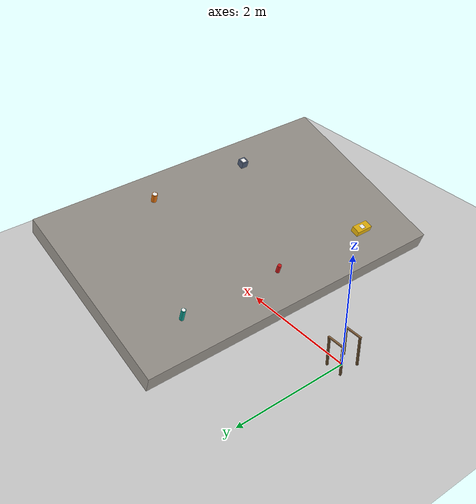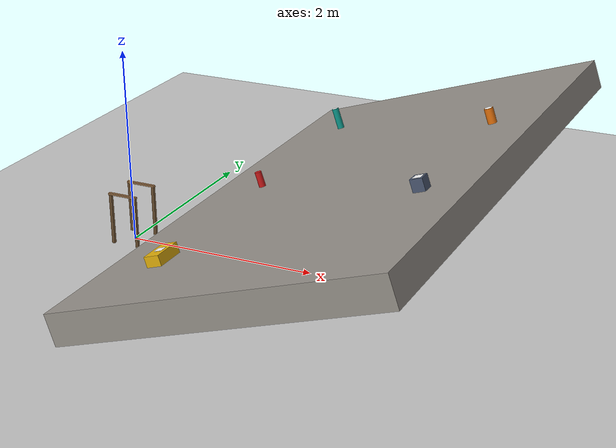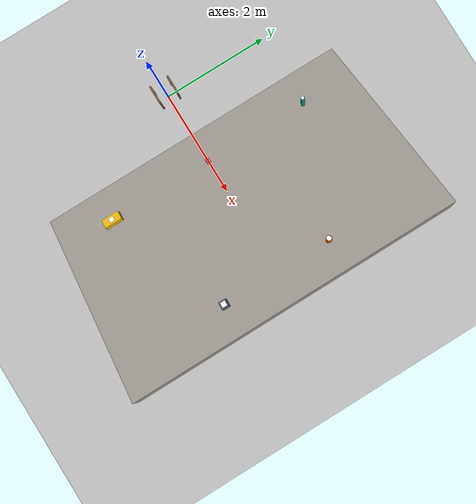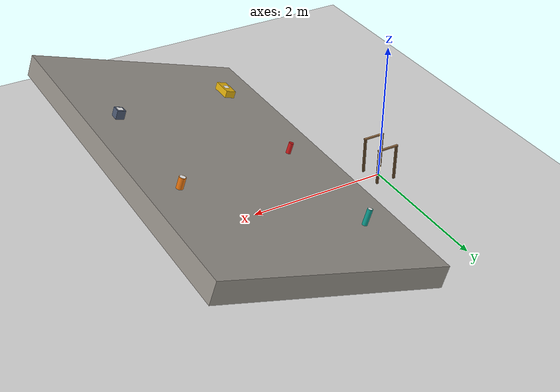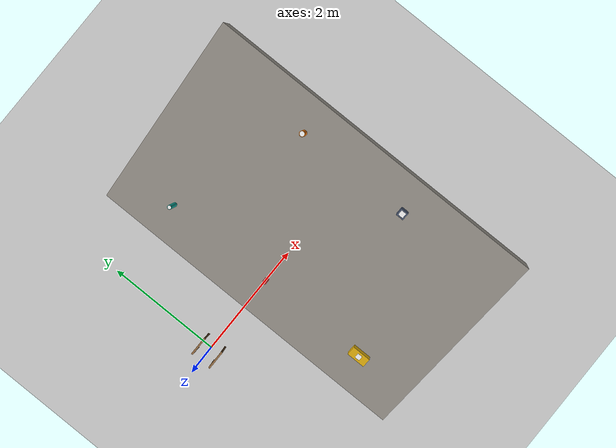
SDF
<?xml version="1.0" encoding="UTF-8"?>
<sdf version="1.9">
  <world name="slope_wall">
    <physics type="ode">
      <max_step_size>0.004</max_step_size>
      <real_time_factor>1.0</real_time_factor>
      <real_time_update_rate>250</real_time_update_rate>
    </physics>
    <plugin name="gz::sim::systems::Physics" filename="gz-sim-physics-system"/>
    <plugin name="gz::sim::systems::UserCommands" filename="gz-sim-user-commands-system"/>
    <plugin name="gz::sim::systems::SceneBroadcaster" filename="gz-sim-scene-broadcaster-system"/>
    <plugin name="gz::sim::systems::Contact" filename="gz-sim-contact-system"/>
    <plugin name="gz::sim::systems::Imu" filename="gz-sim-imu-system"/>
    <plugin name="gz::sim::systems::AirPressure" filename="gz-sim-air-pressure-system"/>
    <plugin name="gz::sim::systems::ApplyLinkWrench" filename="gz-sim-apply-link-wrench-system"/>
    <plugin name="gz::sim::systems::NavSat" filename="gz-sim-navsat-system"/>
    <plugin name="gz::sim::systems::ForceTorque" filename="gz-sim-forcetorque-system"/>
    <plugin name="gz::sim::systems::Sensors" filename="gz-sim-sensors-system">
      <render_engine>ogre2</render_engine>
    </plugin>
    <gui fullscreen="false">
      <!-- 3D scene -->
      <plugin filename="MinimalScene" name="3D View">
        <gz-gui>
          <title>3D View</title>
          <property type="bool" key="showTitleBar">false</property>
          <property type="string" key="state">docked</property>
        </gz-gui>
        <engine>ogre2</engine>
        <scene>scene</scene>
        <ambient_light>0.4 0.4 0.4</ambient_light>
        <background_color>0.8 0.8 0.8</background_color>
        <camera_pose>-6 0 6 0 0.5 0</camera_pose>
        <camera_clip>
          <near>0.25</near>
          <far>25000</far>
        </camera_clip>
      </plugin>
      <!-- Plugins that add functionality to the scene -->
      <plugin filename="EntityContextMenuPlugin" name="Entity context menu">
        <gz-gui>
          <property key="state" type="string">floating</property>
          <property key="width" type="double">5</property>
          <property key="height" type="double">5</property>
          <property key="showTitleBar" type="bool">false</property>
        </gz-gui>
      </plugin>
      <plugin filename="GzSceneManager" name="Scene Manager">
        <gz-gui>
          <property key="resizable" type="bool">false</property>
          <property key="width" type="double">5</property>
          <property key="height" type="double">5</property>
          <property key="state" type="string">floating</property>
          <property key="showTitleBar" type="bool">false</property>
        </gz-gui>
      </plugin>
      <plugin filename="InteractiveViewControl" name="Interactive view control">
        <gz-gui>
          <property key="resizable" type="bool">false</property>
          <property key="width" type="double">5</property>
          <property key="height" type="double">5</property>
          <property key="state" type="string">floating</property>
          <property key="showTitleBar" type="bool">false</property>
        </gz-gui>
      </plugin>
      <plugin filename="CameraTracking" name="Camera Tracking">
        <gz-gui>
          <property key="resizable" type="bool">false</property>
          <property key="width" type="double">5</property>
          <property key="height" type="double">5</property>
          <property key="state" type="string">floating</property>
          <property key="showTitleBar" type="bool">false</property>
        </gz-gui>
      </plugin>
      <plugin filename="MarkerManager" name="Marker manager">
        <gz-gui>
          <property key="resizable" type="bool">false</property>
          <property key="width" type="double">5</property>
          <property key="height" type="double">5</property>
          <property key="state" type="string">floating</property>
          <property key="showTitleBar" type="bool">false</property>
        </gz-gui>
      </plugin>
      <plugin filename="SelectEntities" name="Select Entities">
        <gz-gui>
          <anchors target="Select entities">
            <line own="right" target="right"/>
            <line own="top" target="top"/>
          </anchors>
          <property key="resizable" type="bool">false</property>
          <property key="width" type="double">5</property>
          <property key="height" type="double">5</property>
          <property key="state" type="string">floating</property>
          <property key="showTitleBar" type="bool">false</property>
        </gz-gui>
      </plugin>
      <plugin filename="VisualizationCapabilities" name="Visualization Capabilities">
        <gz-gui>
          <property key="resizable" type="bool">false</property>
          <property key="width" type="double">5</property>
          <property key="height" type="double">5</property>
          <property key="state" type="string">floating</property>
          <property key="showTitleBar" type="bool">false</property>
        </gz-gui>
      </plugin>
      <plugin filename="Spawn" name="Spawn Entities">
        <gz-gui>
          <anchors target="Select entities">
            <line own="right" target="right"/>
            <line own="top" target="top"/>
          </anchors>
          <property key="resizable" type="bool">false</property>
          <property key="width" type="double">5</property>
          <property key="height" type="double">5</property>
          <property key="state" type="string">floating</property>
          <property key="showTitleBar" type="bool">false</property>
        </gz-gui>
      </plugin>
      <plugin name="World control" filename="WorldControl">
        <gz-gui>
          <title>World control</title>
          <property type="bool" key="showTitleBar">0</property>
          <property type="bool" key="resizable">0</property>
          <property type="double" key="height">72</property>
          <property type="double" key="width">121</property>
          <property type="double" key="z">1</property>
          <property type="string" key="state">floating</property>
          <anchors target="3D View">
            <line own="left" target="left"/>
            <line own="bottom" target="bottom"/>
          </anchors>
        </gz-gui>
        <play_pause>1</play_pause>
        <step>1</step>
        <start_paused>1</start_paused>
      </plugin>
      <plugin name="World stats" filename="WorldStats">
        <gz-gui>
          <title>World stats</title>
          <property type="bool" key="showTitleBar">0</property>
          <property type="bool" key="resizable">0</property>
          <property type="double" key="height">110</property>
          <property type="double" key="width">290</property>
          <property type="double" key="z">1</property>
          <property type="string" key="state">floating</property>
          <anchors target="3D View">
            <line own="right" target="right"/>
            <line own="bottom" target="bottom"/>
          </anchors>
        </gz-gui>
        <sim_time>1</sim_time>
        <real_time>1</real_time>
        <real_time_factor>1</real_time_factor>
        <iterations>1</iterations>
      </plugin>
      <plugin name="Entity tree" filename="EntityTree"/>
    </gui>
    <gravity>0 0 -9.8</gravity>
    <magnetic_field>6e-06 2.3e-05 -4.2e-05</magnetic_field>
    <atmosphere type="adiabatic"/>
    <scene>
      <grid>false</grid>
      <ambient>0.4 0.4 0.4 1</ambient>
      <background>0.7 0.7 0.7 1</background>
      <shadows>true</shadows>
    </scene>
    <model name="ground_plane">
      <static>true</static>
      <link name="link">
        <collision name="collision">
          <geometry>
            <plane>
              <normal>0 0 1</normal>
              <size>1 1</size>
            </plane>
          </geometry>
          <surface>
            <friction>
              <ode/>
            </friction>
            <bounce/>
            <contact/>
          </surface>
        </collision>
        <visual name="visual">
          <geometry>
            <plane>
              <normal>0 0 1</normal>
              <size>100 100</size>
            </plane>
          </geometry>
          <material>
            <ambient>0.8 0.8 0.8 1</ambient>
            <diffuse>0.8 0.8 0.8 1</diffuse>
            <specular>0.8 0.8 0.8 1</specular>
          </material>
        </visual>
        <pose>0 0 0 0 -0 0</pose>
        <inertial>
          <pose>0 0 0 0 -0 0</pose>
          <mass>1</mass>
          <inertia>
            <ixx>1</ixx>
            <ixy>0</ixy>
            <ixz>0</ixz>
            <iyy>1</iyy>
            <iyz>0</iyz>
            <izz>1</izz>
          </inertia>
        </inertial>
        <enable_wind>false</enable_wind>
      </link>
      <pose>0 0 0 0 -0 0</pose>
      <self_collide>false</self_collide>
    </model>
    <include>
      <uri>model://hillstar_arm_clearance_stand</uri>
      <pose>0 0 0 0 0 0</pose>
    </include>
    <model name="slope_wall">
      <static>true</static>
      <!-- pose pitch 1.2566 rad (72°) => ramp surface is inclined ~18° off the -->
      <!-- horizontal plane (incline_from_horizontal = 90° - pose_pitch) -->
      <pose>2.5 0 1.0 0 1.2566 0</pose>
      <link name="wall_link">
        <collision name="collision">
          <geometry>
            <box><size>0.3 5.5 3.2</size></box>
          </geometry>
          <surface>
            <friction>
              <ode>
                <mu>1.5</mu>
                <mu2>1.5</mu2>
              </ode>
            </friction>
          </surface>
        </collision>
        <visual name="visual">
          <geometry>
            <box><size>0.3 5.5 3.2</size></box>
          </geometry>
          <material>
            <ambient>0.55 0.53 0.5 1</ambient>
            <diffuse>0.6 0.58 0.55 1</diffuse>
            <specular>0.15 0.15 0.15 1</specular>
          </material>
        </visual>
      </link>
    </model>
    <model name="grasp_object_toolbox">
      <pose>1.487 -1.8 0.881 0 1.2566 0</pose>
      <link name="object_link">
        <inertial>
          <mass>0.4</mass>
          <inertia>
            <ixx>0.0011</ixx><iyy>0.0011</iyy><izz>0.0009</izz>
            <ixy>0</ixy><ixz>0</ixz><iyz>0</iyz>
          </inertia>
        </inertial>
        <collision name="collision">
          <geometry>
            <box><size>0.10 0.30 0.15</size></box>
          </geometry>
          <surface>
            <friction>
              <ode><mu>1.5</mu><mu2>1.5</mu2></ode>
            </friction>
          </surface>
        </collision>
        <visual name="visual">
          <geometry>
            <box><size>0.10 0.30 0.15</size></box>
          </geometry>
          <material><ambient>0.9 0.7 0.05 1</ambient></material>
        </visual>
        <visual name="tag">
          <pose>-0.051 0 0 0 0 0</pose>
          <geometry>
            <box><size>0.002 0.08 0.08</size></box>
          </geometry>
          <material>
            <ambient>1 1 1 1</ambient>
            <diffuse>1 1 1 1</diffuse>
            <specular>0.1 0.1 0.1 1</specular>
            <pbr>
              <metal>
                <albedo_map>model://tag_textures/materials/textures/tag_0_toolbox.png</albedo_map>
                <metalness>0.0</metalness>
                <roughness>1.0</roughness>
              </metal>
            </pbr>
          </material>
        </visual>
      </link>
    </model>
    <model name="grasp_object_can">
      <pose>1.484 0 0.891 0 -0.3142 0</pose>
      <link name="object_link">
        <inertial>
          <mass>0.1</mass>
          <inertia>
            <ixx>0.00013</ixx><iyy>0.00013</iyy><izz>0.00005</izz>
            <ixy>0</ixy><ixz>0</ixz><iyz>0</iyz>
          </inertia>
        </inertial>
        <collision name="collision">
          <geometry>
            <cylinder><radius>0.033</radius><length>0.18</length></cylinder>
          </geometry>
          <surface>
            <friction>
              <ode><mu>1.5</mu><mu2>1.5</mu2></ode>
            </friction>
          </surface>
        </collision>
        <visual name="visual">
          <geometry>
            <cylinder><radius>0.033</radius><length>0.18</length></cylinder>
          </geometry>
          <material><ambient>0.8 0.1 0.1 1</ambient></material>
        </visual>
        <visual name="tag">
          <pose>0 0 0.061 0 0 0</pose>
          <geometry>
            <cylinder><radius>0.028</radius><length>0.002</length></cylinder>
          </geometry>
          <material>
            <ambient>1 1 1 1</ambient>
            <diffuse>1 1 1 1</diffuse>
            <specular>0.1 0.1 0.1 1</specular>
            <pbr>
              <metal>
                <albedo_map>model://tag_textures/materials/textures/tag_1_can.png</albedo_map>
                <metalness>0.0</metalness>
                <roughness>1.0</roughness>
              </metal>
            </pbr>
          </material>
        </visual>
      </link>
    </model>
    <model name="grasp_object_bottle">
      <pose>1.469 1.8 0.938 0 -0.3142 0</pose>
      <link name="object_link">
        <inertial>
          <mass>0.25</mass>
          <inertia>
            <ixx>0.0011</ixx><iyy>0.0011</iyy><izz>0.00015</izz>
            <ixy>0</ixy><ixz>0</ixz><iyz>0</iyz>
          </inertia>
        </inertial>
        <collision name="collision">
          <geometry>
            <cylinder><radius>0.035</radius><length>0.22</length></cylinder>
          </geometry>
          <surface>
            <friction>
              <ode><mu>1.5</mu><mu2>1.5</mu2></ode>
            </friction>
          </surface>
        </collision>
        <visual name="visual">
          <geometry>
            <cylinder><radius>0.035</radius><length>0.22</length></cylinder>
          </geometry>
          <material><ambient>0.05 0.6 0.55 1</ambient></material>
        </visual>
        <!-- AprilTag 36h11 id 2. Local +Z verified as the face away from the wall. -->
        <visual name="tag">
          <pose>0 0 0.111 0 0 0</pose>
          <geometry>
            <cylinder><radius>0.03</radius><length>0.002</length></cylinder>
          </geometry>
          <material>
            <ambient>1 1 1 1</ambient>
            <diffuse>1 1 1 1</diffuse>
            <specular>0.1 0.1 0.1 1</specular>
            <pbr>
              <metal>
                <albedo_map>model://tag_textures/materials/textures/tag_2_bottle.png</albedo_map>
                <metalness>0.0</metalness>
                <roughness>1.0</roughness>
              </metal>
            </pbr>
          </material>
        </visual>
      </link>
    </model>
    <model name="grasp_object_cube">
      <pose>3.481 -0.9 1.540 0 1.2566 0</pose>
      <link name="object_link">
        <inertial>
          <mass>0.2</mass>
          <inertia>
            <ixx>0.00048</ixx><iyy>0.00048</iyy><izz>0.00048</izz>
            <ixy>0</ixy><ixz>0</ixz><iyz>0</iyz>
          </inertia>
        </inertial>
        <collision name="collision">
          <geometry>
            <box><size>0.12 0.12 0.12</size></box>
          </geometry>
          <surface>
            <friction>
              <ode><mu>1.5</mu><mu2>1.5</mu2></ode>
            </friction>
          </surface>
        </collision>
        <visual name="visual">
          <geometry>
            <box><size>0.12 0.12 0.12</size></box>
          </geometry>
          <material><ambient>0.3 0.35 0.45 1</ambient></material>
        </visual>
        <!-- AprilTag 36h11 id 3. Same box convention as the toolbox: local -X -->
        <!-- verified as the face away from the wall. -->
        <visual name="tag">
          <pose>-0.061 0 0 0 0 0</pose>
          <geometry>
            <box><size>0.002 0.08 0.08</size></box>
          </geometry>
          <material>
            <ambient>1 1 1 1</ambient>
            <diffuse>1 1 1 1</diffuse>
            <specular>0.1 0.1 0.1 1</specular>
            <pbr>
              <metal>
                <albedo_map>model://tag_textures/materials/textures/tag_3_cube.png</albedo_map>
                <metalness>0.0</metalness>
                <roughness>1.0</roughness>
              </metal>
            </pbr>
          </material>
        </visual>
      </link>
    </model>
    <model name="grasp_object_cylinder">
      <pose>3.477 0.9 1.554 0 -0.3142 0</pose>
      <link name="object_link">
        <inertial>
          <mass>0.15</mass>
          <inertia>
            <ixx>0.00034</ixx><iyy>0.00034</iyy><izz>0.00015</izz>
            <ixy>0</ixy><ixz>0</ixz><iyz>0</iyz>
          </inertia>
        </inertial>
        <collision name="collision">
          <geometry>
            <cylinder><radius>0.045</radius><length>0.15</length></cylinder>
          </geometry>
          <surface>
            <friction>
              <ode><mu>1.5</mu><mu2>1.5</mu2></ode>
            </friction>
          </surface>
        </collision>
        <visual name="visual">
          <geometry>
            <cylinder><radius>0.045</radius><length>0.15</length></cylinder>
          </geometry>
          <material><ambient>0.9 0.45 0.05 1</ambient></material>
        </visual>
        <!-- AprilTag 36h11 id 4. Local +Z verified as the face away from the wall. -->
        <visual name="tag">
          <pose>0 0 0.076 0 0 0</pose>
          <geometry>
            <cylinder><radius>0.038</radius><length>0.002</length></cylinder>
          </geometry>
          <material>
            <ambient>1 1 1 1</ambient>
            <diffuse>1 1 1 1</diffuse>
            <specular>0.1 0.1 0.1 1</specular>
            <pbr>
              <metal>
                <albedo_map>model://tag_textures/materials/textures/tag_4_cylinder.png</albedo_map>
                <metalness>0.0</metalness>
                <roughness>1.0</roughness>
              </metal>
            </pbr>
          </material>
        </visual>
      </link>
    </model>
    <light name="sunUTC" type="directional">
      <pose>0 0 500 0 -0 0</pose>
      <cast_shadows>true</cast_shadows>
      <intensity>1</intensity>
      <direction>0.001 0.625 -0.78</direction>
      <diffuse>0.904 0.904 0.904 1</diffuse>
      <specular>0.271 0.271 0.271 1</specular>
      <attenuation>
        <range>2000</range>
        <linear>0</linear>
        <constant>1</constant>
        <quadratic>0</quadratic>
      </attenuation>
      <spot>
        <inner_angle>0</inner_angle>
        <outer_angle>0</outer_angle>
        <falloff>0</falloff>
      </spot>
    </light>
    <spherical_coordinates>
      <surface_model>EARTH_WGS84</surface_model>
      <world_frame_orientation>ENU</world_frame_orientation>
      <latitude_deg>47.397971057728974</latitude_deg>
      <longitude_deg> 8.546163739800146</longitude_deg>
      <elevation>0</elevation>
    </spherical_coordinates>
    <plugin filename="gz-sim-pose-publisher-system" name="gz::sim::systems::PosePublisher">
      <publish_link_pose>true</publish_link_pose>
      <publish_model_pose>true</publish_model_pose>
      <use_pose_vector_msg>true</use_pose_vector_msg>
      <static_publisher>true</static_publisher>
      <static_update_frequency>1</static_update_frequency>
    </plugin>
  </world>
</sdf>

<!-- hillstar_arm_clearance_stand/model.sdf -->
<sdf version="1.9">
  <model name="hillstar_arm_clearance_stand">
    <static>true</static>
    <link name="stand_link">
      <pose>0 0 0 0 0 0</pose>

      <!-- Left rail: supports hillstar_base's collision_leg_left
           (skid centered at y=-0.1715). Top surface at z=0.55. -->
      <collision name="collision_rail_left">
        <pose>0 -0.1715 0.54 0 0 0</pose>
        <geometry>
          <box>
            <size>0.32 0.03 0.02</size>
          </box>
        </geometry>
      </collision>
      <visual name="visual_rail_left">
        <pose>0 -0.1715 0.54 0 0 0</pose>
        <geometry>
          <box>
            <size>0.32 0.03 0.02</size>
          </box>
        </geometry>
        <material>
          <ambient>0.35 0.25 0.15 1</ambient>
          <diffuse>0.55 0.4 0.25 1</diffuse>
          <specular>0.2 0.2 0.2 1</specular>
        </material>
      </visual>

      <!-- Right rail: supports collision_leg_right (skid at y=+0.1715). -->
      <collision name="collision_rail_right">
        <pose>0 0.1715 0.54 0 0 0</pose>
        <geometry>
          <box>
            <size>0.32 0.03 0.02</size>
          </box>
        </geometry>
      </collision>
      <visual name="visual_rail_right">
        <pose>0 0.1715 0.54 0 0 0</pose>
        <geometry>
          <box>
            <size>0.32 0.03 0.02</size>
          </box>
        </geometry>
        <material>
          <ambient>0.35 0.25 0.15 1</ambient>
          <diffuse>0.55 0.4 0.25 1</diffuse>
          <specular>0.2 0.2 0.2 1</specular>
        </material>
      </visual>

      <collision name="collision_leg_fl">
        <pose>0.14 -0.1715 0.265 0 0 0</pose>
        <geometry>
          <box>
            <size>0.03 0.03 0.53</size>
          </box>
        </geometry>
      </collision>
      <visual name="visual_leg_fl">
        <pose>0.14 -0.1715 0.265 0 0 0</pose>
        <geometry>
          <box>
            <size>0.03 0.03 0.53</size>
          </box>
        </geometry>
        <material>
          <ambient>0.25 0.18 0.1 1</ambient>
          <diffuse>0.4 0.3 0.18 1</diffuse>
        </material>
      </visual>

      <collision name="collision_leg_bl">
        <pose>-0.14 -0.1715 0.265 0 0 0</pose>
        <geometry>
          <box>
            <size>0.03 0.03 0.53</size>
          </box>
        </geometry>
      </collision>
      <visual name="visual_leg_bl">
        <pose>-0.14 -0.1715 0.265 0 0 0</pose>
        <geometry>
          <box>
            <size>0.03 0.03 0.53</size>
          </box>
        </geometry>
        <material>
          <ambient>0.25 0.18 0.1 1</ambient>
          <diffuse>0.4 0.3 0.18 1</diffuse>
        </material>
      </visual>

      <collision name="collision_leg_fr">
        <pose>0.14 0.1715 0.265 0 0 0</pose>
        <geometry>
          <box>
            <size>0.03 0.03 0.53</size>
          </box>
        </geometry>
      </collision>
      <visual name="visual_leg_fr">
        <pose>0.14 0.1715 0.265 0 0 0</pose>
        <geometry>
          <box>
            <size>0.03 0.03 0.53</size>
          </box>
        </geometry>
        <material>
          <ambient>0.25 0.18 0.1 1</ambient>
          <diffuse>0.4 0.3 0.18 1</diffuse>
        </material>
      </visual>

      <collision name="collision_leg_br">
        <pose>-0.14 0.1715 0.265 0 0 0</pose>
        <geometry>
          <box>
            <size>0.03 0.03 0.53</size>
          </box>
        </geometry>
      </collision>
      <visual name="visual_leg_br">
        <pose>-0.14 0.1715 0.265 0 0 0</pose>
        <geometry>
          <box>
            <size>0.03 0.03 0.53</size>
          </box>
        </geometry>
        <material>
          <ambient>0.25 0.18 0.1 1</ambient>
          <diffuse>0.4 0.3 0.18 1</diffuse>
        </material>
      </visual>
    </link>
  </model>
</sdf>
